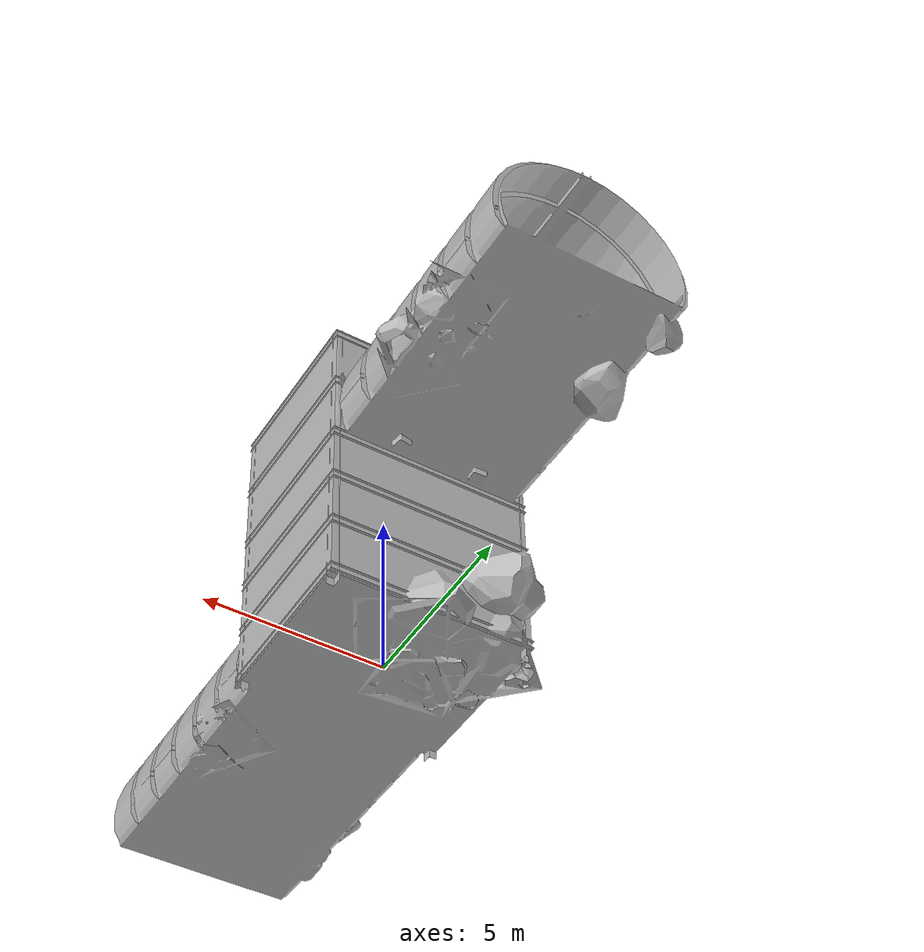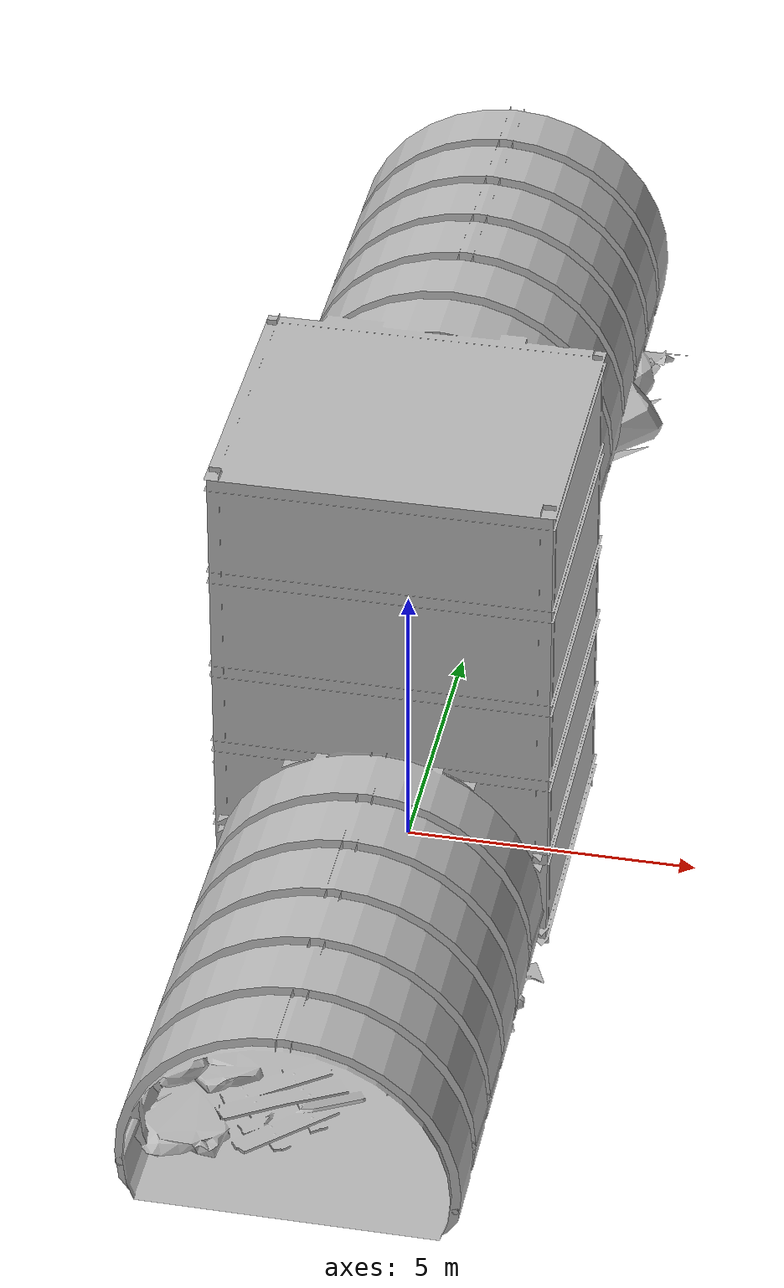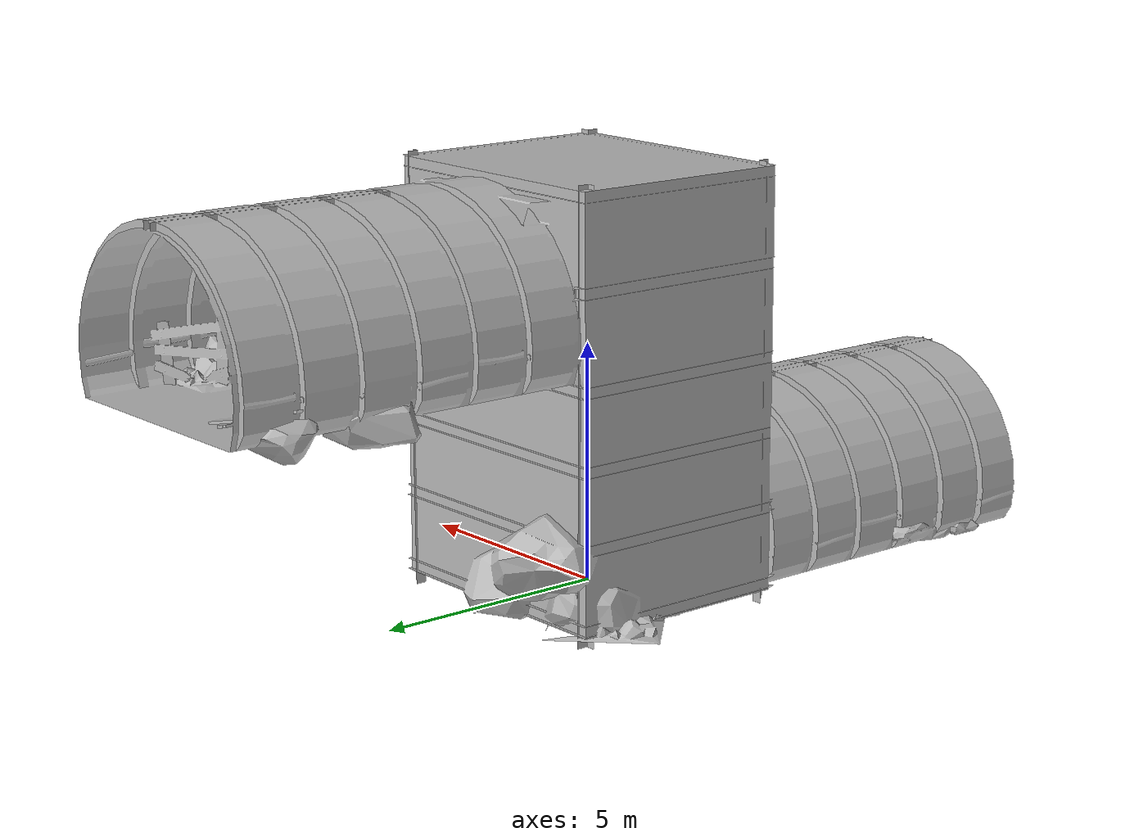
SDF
<?xml version="1.0" ?>
<sdf version="1.6">
  <model name="rough_tunnel_tile_vertical_shaft">
    <static>true</static>
    <link name="link">
      <collision name="collision">
        <geometry>
          <mesh>
            <uri>model://rough_tunnel_tile_vertical_shaft/meshes/VerticalShaft_Collider.DAE</uri>
          </mesh>
        </geometry>
      </collision>

      <visual name="visual">
        <geometry>
          <mesh>
            <uri>model://rough_tunnel_tile_vertical_shaft/meshes/VerticalShaft.DAE</uri>
          </mesh>
        </geometry>
      </visual>
    </link>
  </model>
</sdf>
